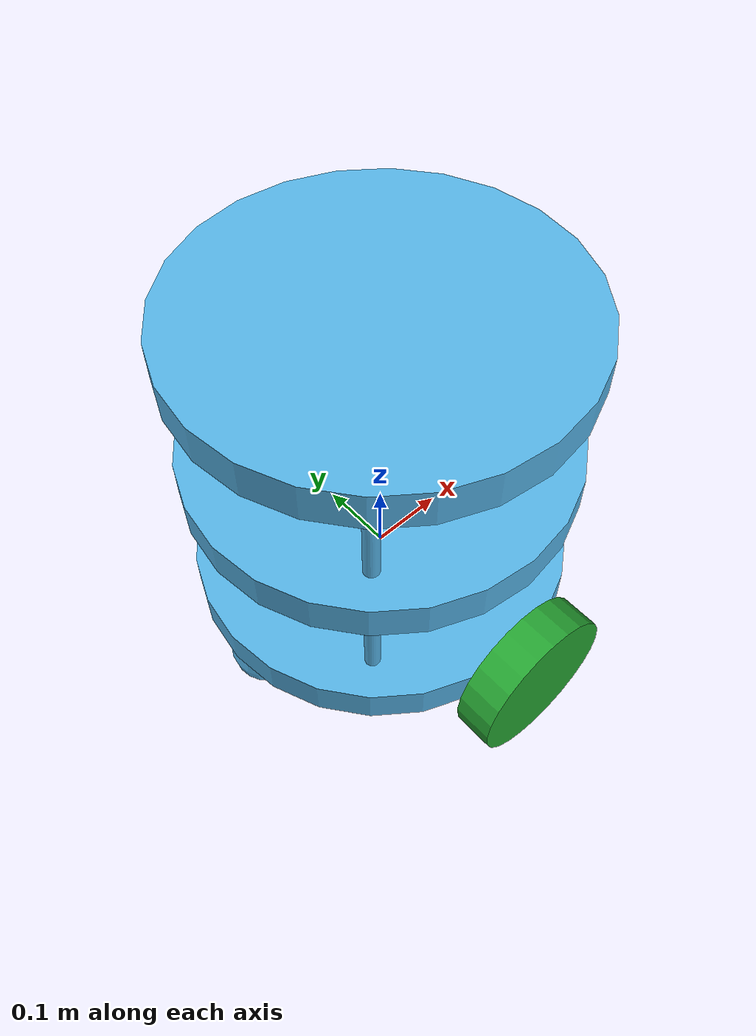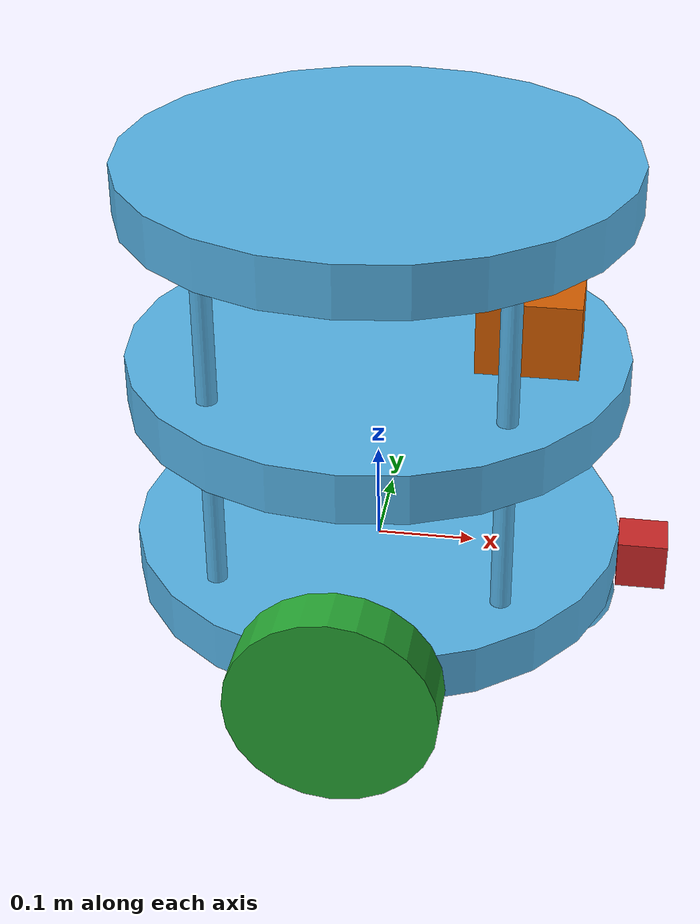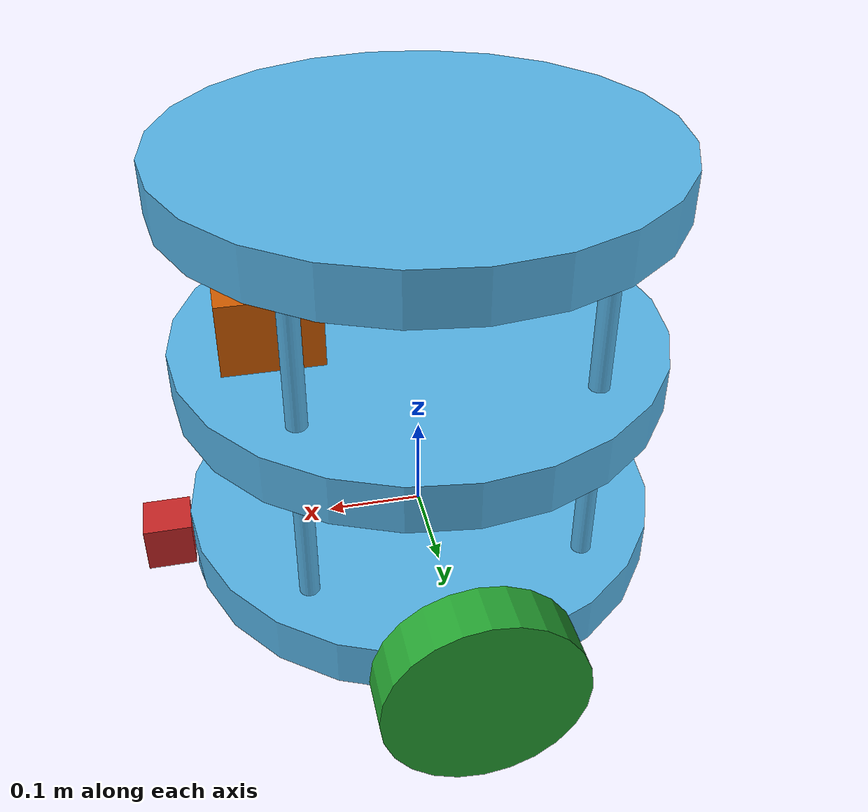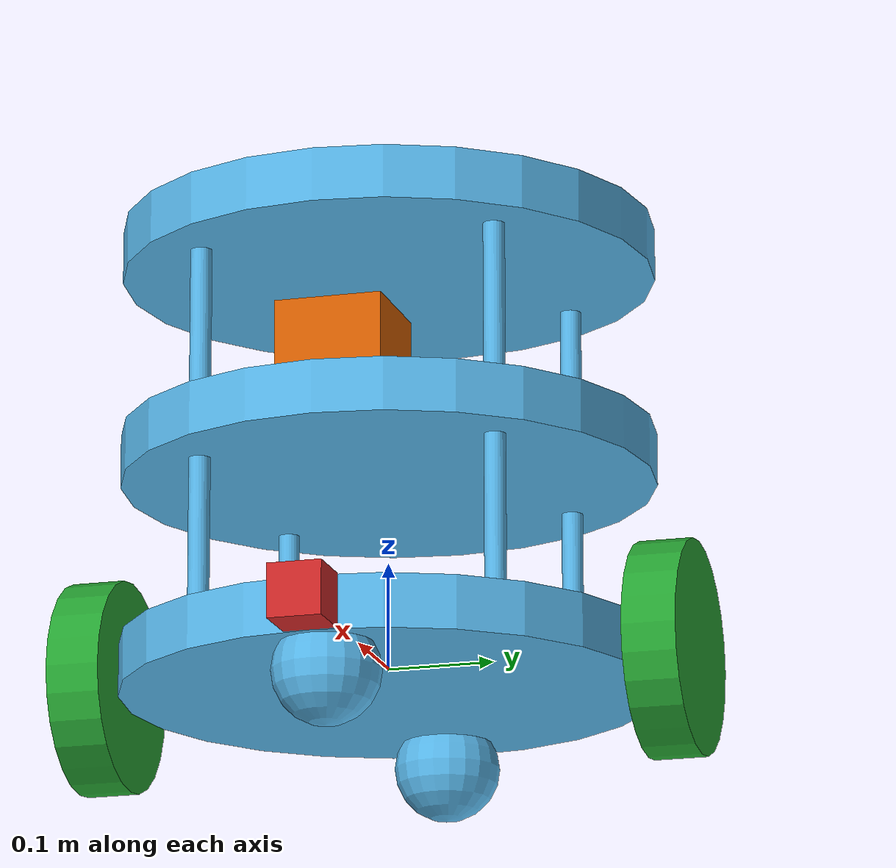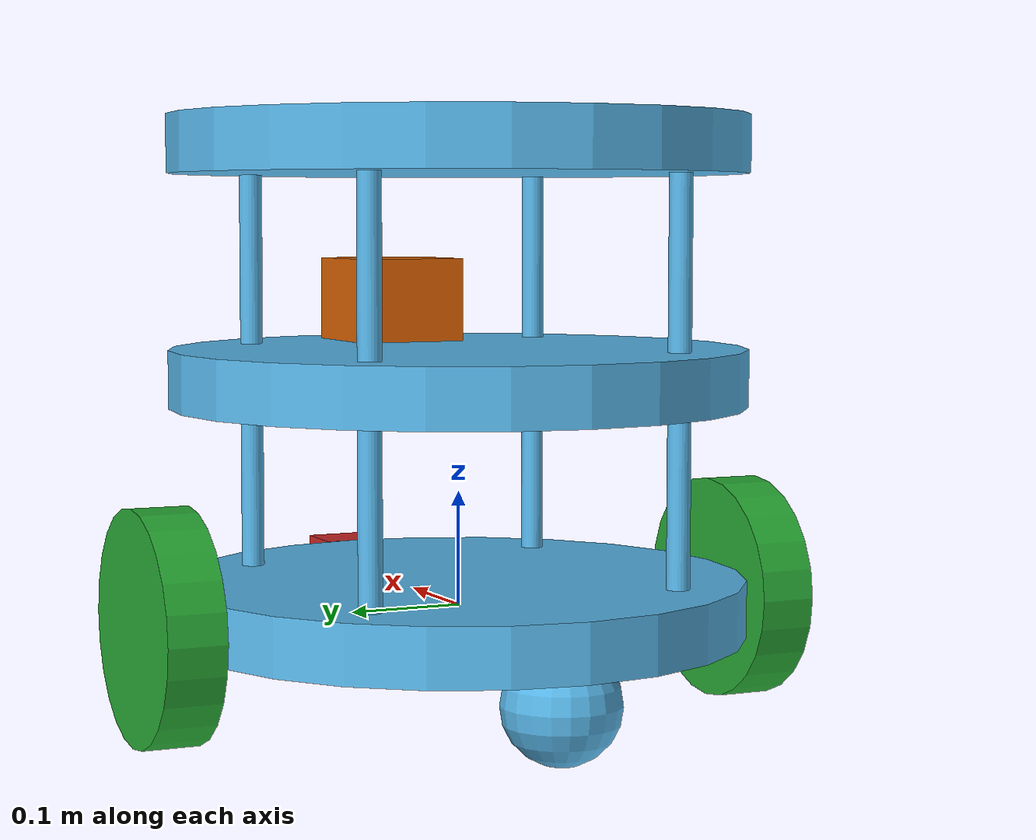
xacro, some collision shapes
<?xml version='1.0'?>

<robot name="my_robot" xmlns:xacro="http://www.ros.org/wiki/xacro">
  <xacro:include filename="$(find my_robot)/urdf/my_robot.gazebo" />

  <link name="robot_footprint"></link>

  <joint name="robot_footprint_joint" type="fixed">
    <origin xyz="0 0 0" rpy="0 0 0" />
    <parent link="robot_footprint"/>
    <child link="chassis" />
  </joint>

  <link name='chassis'>
    <pose>0 0 0.1 0 0 0</pose>

    <inertial>
      <mass value="10.0"/>
      <origin xyz="0.0 0 0" rpy=" 0 0 0"/>
      <inertia
          ixx="0.1" ixy="0" ixz="0"
          iyy="0.1" iyz="0"
          izz="0.1"
      />

    </inertial>

    <collision name='collision'>
      <origin xyz="0 0 0" rpy=" 0 0 0"/>
      <geometry>
        <cylinder length=".05" radius=".25"/>
      </geometry>
    </collision>

    <visual name='chassis_visual'>
      <origin xyz="0 0 0" rpy=" 0 0 0"/>
      <geometry>
        <cylinder length=".05" radius=".25"/>
      </geometry>
    </visual>

     <collision name='collision_level_one'>
      <origin xyz="0 0 0.20" rpy=" 0 0 0"/>
      <geometry>
        <cylinder length=".05" radius=".25"/>
      </geometry>
    </collision>

    <visual name='chassis_visual_level_one'>
      <origin xyz="0 0 0.20" rpy=" 0 0 0"/>
      <geometry>
        <cylinder length=".05" radius=".25"/>
      </geometry>
    </visual>
    <collision name='collision_rod_front_right'>
      <origin xyz="0.14 0.14 0.20" rpy=" 0 0 0"/>
      <geometry>
        <cylinder length=".40" radius=".01"/>
      </geometry>
    </collision>

    <visual name='chassis_visual_rod_front_right'>
      <origin xyz="0.14 0.14 0.20" rpy=" 0 0 0"/>
      <geometry>
        <cylinder length=".40" radius=".01"/>
      </geometry>
    </visual>
<collision name='collision_rod_front_left'>
      <origin xyz="0.14 -0.14 0.2" rpy=" 0 0 0"/>
      <geometry>
        <cylinder length=".40" radius=".01"/>
      </geometry>
    </collision>

    <visual name='chassis_visual_rod_front_left'>
      <origin xyz="0.14 -0.14 0.2" rpy=" 0 0 0"/>
      <geometry>
        <cylinder length=".40" radius=".01"/>
      </geometry>
    </visual>
    <collision name='collision_rod_rear_right'>
      <origin xyz="-0.14 0.14 0.20" rpy=" 0 0 0"/>
      <geometry>
        <cylinder length=".40" radius=".01"/>
      </geometry>
    </collision>

    <visual name='chassis_visual_rod_rear_right'>
      <origin xyz="-0.14 0.14 0.20" rpy=" 0 0 0"/>
      <geometry>
        <cylinder length=".40" radius=".01"/>
      </geometry>
    </visual>
    <collision name='collision_rod_rear_left'>
      <origin xyz="-0.14 -0.14 0.20" rpy=" 0 0 0"/>
      <geometry>
        <cylinder length=".40" radius=".01"/>
      </geometry>
    </collision>

    <visual name='chassis_visual_rod_rear_left'>
      <origin xyz="-0.14 -0.14 0.20" rpy=" 0 0 0"/>
      <geometry>
        <cylinder length=".40" radius=".01"/>
      </geometry>
    </visual>
    <collision name='collision_level_two'>
      <origin xyz="0 0 0.40" rpy=" 0 0 0"/>
      <geometry>
        <cylinder length=".05" radius=".25"/>
      </geometry>
    </collision>

    <visual name='chassis_visual_level_two'>
      <origin xyz="0 0 0.40" rpy=" 0 0 0"/>
      <geometry>
        <cylinder length=".05" radius=".25"/>
      </geometry>
    </visual>

    <collision name='back_caster_collision'>
      <origin xyz="-0.15 0 -0.05" rpy=" 0 0 0"/>
      <geometry>
        <sphere radius="0.0499"/>
      </geometry>
    </collision>

    <visual name='back_caster_visual'>
      <origin xyz="-0.20 0 -0.05" rpy=" 0 0 0"/>
      <geometry>
        <sphere radius="0.05"/>
      </geometry>
    </visual>

    <collision name='front_caster_collision'>
      <origin xyz="0.20 0 -0.05" rpy=" 0 0 0"/>
      <geometry>
        <sphere radius="0.0499"/>
      </geometry>
    </collision>

    <visual name='front_caster_visual'>
      <origin xyz="0.20 0 -0.05" rpy=" 0 0 0"/>
      <geometry>
        <sphere radius="0.05"/>
      </geometry>
    </visual>
  </link>
  <gazebo reference="chassis">
     <material name="new_color">
      <color rgba="0.0 0.0 1.0 1.0"/>
    </material>
</gazebo>
  <link name='left_wheel'>
    <pose> 0 0.27 0.1 0 0 0</pose>

    <inertial>
      <mass value="5.0"/>
      <origin xyz="0.0 0 0" rpy=" 0 0 0"/>
      <inertia
          ixx="0.1" ixy="0" ixz="0"
          iyy="0.1" iyz="0"
          izz="0.1"
      />
    </inertial>

    <collision name='left_wheel_collision'>
      <origin xyz="0 0 0" rpy=" 0 1.5707 1.5707"/>
      <geometry>
        <cylinder length=".05" radius=".1"/>
      </geometry>
    </collision>

    <visual name='left_wheel_visual'>
      <origin xyz="0 0 0" rpy=" 0 1.5707 1.5707"/>
      <geometry>
        <cylinder length=".05" radius=".1"/>
      </geometry>
    </visual>
 </link>
 <gazebo reference="left_wheel">
    <material>Gazebo/Green</material>
</gazebo>

 <link name='right_wheel'>
    <pose> 0 -0.27 0.1 0 0 0</pose>
    <inertial>
      <mass value="5.0"/>
      <origin xyz="0.0 0 0" rpy=" 0 0 0"/>
      <inertia
          ixx="0.1" ixy="0" ixz="0"
          iyy="0.1" iyz="0"
          izz="0.1"
      />
    </inertial>

    <collision name='right_wheel_collision'>
      <origin xyz="0 0 0" rpy=" 0 1.5707 1.5707"/>
      <geometry>
        <cylinder length=".05" radius=".1"/>
      </geometry>
    </collision>

    <visual name='right_wheel_visual'>
      <origin xyz="0 0 0" rpy=" 0 1.5707 1.5707"/>
      <geometry>
        <cylinder length=".05" radius=".1"/>
      </geometry>
    </visual>
 </link>
 <gazebo reference="right_wheel">
    <material>Gazebo/Green</material>
</gazebo>
  <joint type="continuous" name="left_wheel_hinge">
    <origin xyz="0 0.27 0" rpy="0 0 0"/>
    <child link="left_wheel"/>
    <parent link="chassis"/>
    <axis xyz="0 1 0" rpy="0 0 0"/>
    <limit effort="10000" velocity="1000"/>
    <dynamics damping="1.0" friction="1.0"/>
  </joint>

  <joint type="continuous" name="right_wheel_hinge">
    <origin xyz="0 -0.275 0" rpy="0 0 0"/>
    <child link="right_wheel"/>
    <parent link="chassis"/>
    <axis xyz="0 1 0" rpy="0 0 0"/>
    <limit effort="10000" velocity="1000"/>
    <dynamics damping="1.0" friction="1.0"/>
  </joint>

  <link name='camera'>
    <pose> 0 0 0 0 0 0</pose>
    <inertial>
      <mass value="0.1"/>
      <origin xyz="0.05 0.05 0.05" rpy=" 0 0 0"/>
      <inertia
          ixx="1e-6" ixy="0" ixz="0"
          iyy="1e-6" iyz="0"
          izz="1e-6"
      />
    </inertial>

    <collision name='camera_collision'>
      <origin xyz="0 0 0" rpy=" 0 0 0"/>
      <geometry>
        <box size="0.05 0.05 0.05"/>
      </geometry>
    </collision>

    <visual name='camera_visual'>
      <origin xyz="0 0 0" rpy=" 0 0 0"/>
      <geometry>
        <box size="0.05 0.05 0.05"/>
      </geometry>
    </visual>
 </link>
 <gazebo reference="camera">
    <material>Gazebo/Red</material>
</gazebo>
 <joint type="fixed" name="camera_joint">
    <origin xyz="0.275 0 0" rpy="0 0 0"/>
    <child link="camera"/>
    <parent link="chassis"/>
    <axis xyz="0 1 0" rpy="0 0 0"/>
    <limit effort="10000" velocity="1000"/>
    <dynamics damping="1.0" friction="1.0"/>
  </joint>

  <link name='hokuyo'>
    <pose> 0 0 0 0 0 0</pose>
    <inertial>
      <mass value="1e-5"/>
      <origin xyz="0 0 0" rpy=" 0 0 0"/>
      <inertia
          ixx="1e-6" ixy="0" ixz="0"
          iyy="1e-6" iyz="0"
          izz="1e-6"
      />
    </inertial>

    <collision name='hokuyo_collision'>
      <origin xyz="0 0 0" rpy=" 0 0 0"/>
      <geometry>
        <box size="0.1 0.1 0.1"/>
      </geometry>
    </collision>

    <visual name='hokuyo_visual'>
      <origin xyz="0 0 0" rpy=" 0 0 0"/>
      <geometry>
        <mesh filename = "package://my_robot/meshes/hokuyo.dae"/>
      </geometry>
    </visual>
 </link>

 <joint type="fixed" name="hokuyo_joint">
    <origin xyz="0.15 0 0.25" rpy="0 0 0"/>
    <child link="hokuyo"/>
    <parent link="chassis"/>
    <axis xyz="0 1 0" rpy="0 0 0"/>
    <limit effort="10000" velocity="1000"/>
    <dynamics damping="1.0" friction="1.0"/>
  </joint>

</robot>
